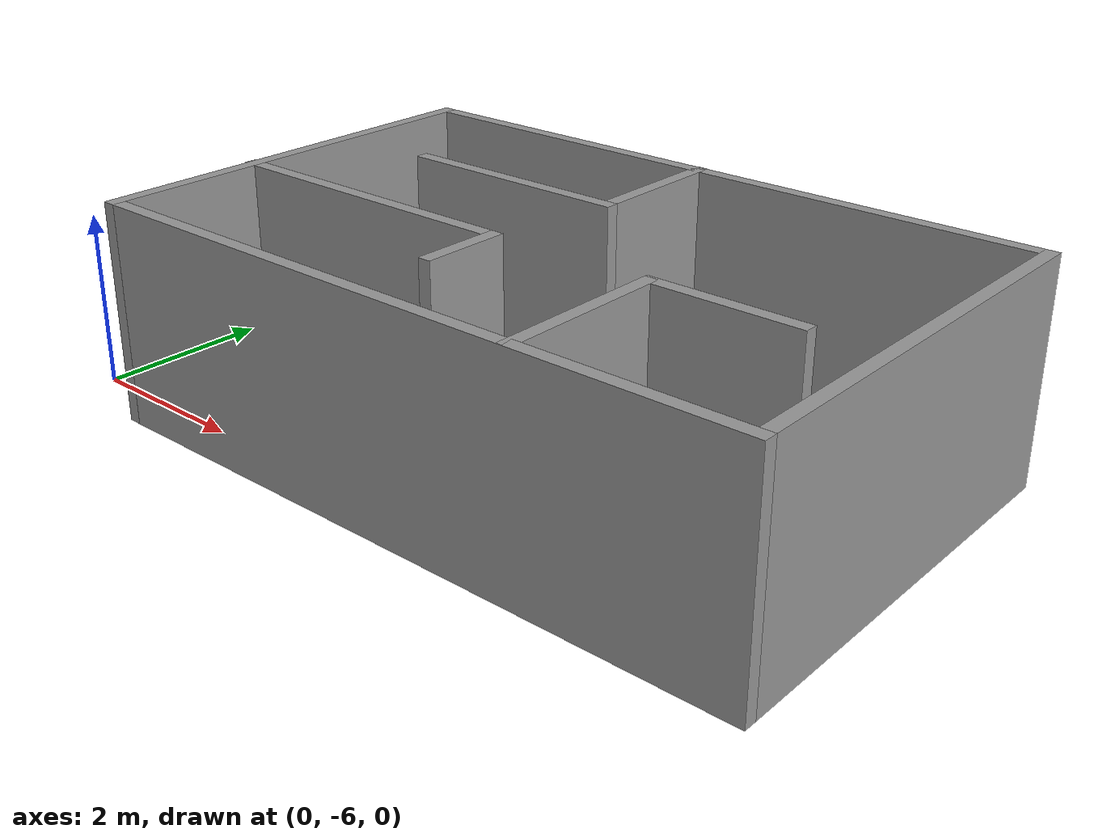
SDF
<?xml version='1.0'?>
<sdf version='1.7'>
  <model name='room'>
    <pose>4.5025 -3.2325 0 0 -0 0</pose>
    <link name='Wall_0'>
      <collision name='Wall_0_Collision'>
        <geometry>
          <box>
            <size>8 0.15 2.5</size>
          </box>
        </geometry>
        <pose>0 0 1.25 0 -0 0</pose>
      </collision>
      <visual name='Wall_0_Visual'>
        <pose>0 0 1.25 0 -0 0</pose>
        <geometry>
          <box>
            <size>8 0.15 2.5</size>
          </box>
        </geometry>
        <material>
          <script>
            <uri>file://media/materials/scripts/gazebo.material</uri>
            <name>Gazebo/Grey</name>
          </script>
          <ambient>1 1 1 1</ambient>
        </material>
        <meta>
          <layer>0</layer>
        </meta>
      </visual>
      <pose>0.5025 1.6925 0 0 -0 0</pose>
    </link>
    <link name='Wall_1'>
      <collision name='Wall_1_Collision'>
        <geometry>
          <box>
            <size>5 0.15 2.5</size>
          </box>
        </geometry>
        <pose>0 0 1.25 0 -0 0</pose>
      </collision>
      <visual name='Wall_1_Visual'>
        <pose>0 0 1.25 0 -0 0</pose>
        <geometry>
          <box>
            <size>5 0.15 2.5</size>
          </box>
        </geometry>
        <material>
          <script>
            <uri>file://media/materials/scripts/gazebo.material</uri>
            <name>Gazebo/Grey</name>
          </script>
          <ambient>1 1 1 1</ambient>
        </material>
        <meta>
          <layer>0</layer>
        </meta>
      </visual>
      <pose>4.4275 -0.7325 0 0 -0 -1.5708</pose>
    </link>
    <link name='Wall_11'>
      <collision name='Wall_11_Collision'>
        <geometry>
          <box>
            <size>2 0.15 2.5</size>
          </box>
        </geometry>
        <pose>0 0 1.25 0 -0 0</pose>
      </collision>
      <visual name='Wall_11_Visual'>
        <pose>0 0 1.25 0 -0 0</pose>
        <geometry>
          <box>
            <size>2 0.15 2.5</size>
          </box>
        </geometry>
        <material>
          <script>
            <uri>file://media/materials/scripts/gazebo.material</uri>
            <name>Gazebo/Grey</name>
          </script>
          <ambient>1 1 1 1</ambient>
        </material>
        <meta>
          <layer>0</layer>
        </meta>
      </visual>
      <pose>2.0205 -2.2265 0 0 -0 1.5708</pose>
    </link>
    <link name='Wall_12'>
      <collision name='Wall_12_Collision'>
        <geometry>
          <box>
            <size>1.75 0.15 2.5</size>
          </box>
        </geometry>
        <pose>0 0 1.25 0 -0 0</pose>
      </collision>
      <visual name='Wall_12_Visual'>
        <pose>0 0 1.25 0 -0 0</pose>
        <geometry>
          <box>
            <size>1.75 0.15 2.5</size>
          </box>
        </geometry>
        <material>
          <script>
            <uri>file://media/materials/scripts/gazebo.material</uri>
            <name>Gazebo/Grey</name>
          </script>
          <ambient>1 1 1 1</ambient>
        </material>
        <meta>
          <layer>0</layer>
        </meta>
      </visual>
      <pose>2.8205 -1.3015 0 0 -0 0</pose>
    </link>
    <link name='Wall_2'>
      <collision name='Wall_2_Collision'>
        <geometry>
          <box>
            <size>8 0.15 2.5</size>
          </box>
        </geometry>
        <pose>0 0 1.25 0 -0 0</pose>
      </collision>
      <visual name='Wall_2_Visual'>
        <pose>0 0 1.25 0 -0 0</pose>
        <geometry>
          <box>
            <size>8 0.15 2.5</size>
          </box>
        </geometry>
        <material>
          <script>
            <uri>file://media/materials/scripts/gazebo.material</uri>
            <name>Gazebo/Grey</name>
          </script>
          <ambient>1 1 1 1</ambient>
        </material>
        <meta>
          <layer>0</layer>
        </meta>
      </visual>
      <pose>0.5025 -3.1575 0 0 -0 3.14159</pose>
    </link>
    <link name='Wall_3'>
      <collision name='Wall_3_Collision'>
        <geometry>
          <box>
            <size>5 0.15 2.5</size>
          </box>
        </geometry>
        <pose>0 0 1.25 0 -0 0</pose>
      </collision>
      <visual name='Wall_3_Visual'>
        <pose>0 0 1.25 0 -0 0</pose>
        <geometry>
          <box>
            <size>5 0.15 2.5</size>
          </box>
        </geometry>
        <material>
          <script>
            <uri>file://media/materials/scripts/gazebo.material</uri>
            <name>Gazebo/Grey</name>
          </script>
          <ambient>1 1 1 1</ambient>
        </material>
        <meta>
          <layer>0</layer>
        </meta>
      </visual>
      <pose>-3.4225 -0.7325 0 0 -0 1.5708</pose>
    </link>
    <link name='Wall_5'>
      <collision name='Wall_5_Collision'>
        <geometry>
          <box>
            <size>1.75 0.15 2.5</size>
          </box>
        </geometry>
        <pose>0 0 1.25 0 -0 0</pose>
      </collision>
      <visual name='Wall_5_Visual'>
        <pose>0 0 1.25 0 -0 0</pose>
        <geometry>
          <box>
            <size>1.75 0.15 2.5</size>
          </box>
        </geometry>
        <material>
          <script>
            <uri>file://media/materials/scripts/gazebo.material</uri>
            <name>Gazebo/Grey</name>
          </script>
          <ambient>1 1 1 1</ambient>
        </material>
        <meta>
          <layer>0</layer>
        </meta>
      </visual>
      <pose>0.421999 0.9015 0 0 -0 -1.5708</pose>
    </link>
    <link name='Wall_6'>
      <collision name='Wall_6_Collision'>
        <geometry>
          <box>
            <size>2.75 0.15 2.5</size>
          </box>
        </geometry>
        <pose>0 0 1.25 0 -0 0</pose>
      </collision>
      <visual name='Wall_6_Visual'>
        <pose>0 0 1.25 0 -0 0</pose>
        <geometry>
          <box>
            <size>2.75 0.15 2.5</size>
          </box>
        </geometry>
        <material>
          <script>
            <uri>file://media/materials/scripts/gazebo.material</uri>
            <name>Gazebo/Grey</name>
          </script>
          <ambient>1 1 1 1</ambient>
        </material>
        <meta>
          <layer>0</layer>
        </meta>
      </visual>
      <pose>-0.878 0.1015 0 0 -0 3.14159</pose>
    </link>
    <link name='Wall_8'>
      <collision name='Wall_8_Collision'>
        <geometry>
          <box>
            <size>3.75 0.15 2.5</size>
          </box>
        </geometry>
        <pose>0 0 1.25 0 -0 0</pose>
      </collision>
      <visual name='Wall_8_Visual'>
        <pose>0 0 1.25 0 -0 0</pose>
        <geometry>
          <box>
            <size>3.75 0.15 2.5</size>
          </box>
        </geometry>
        <material>
          <script>
            <uri>file://media/materials/scripts/gazebo.material</uri>
            <name>Gazebo/Grey</name>
          </script>
          <ambient>1 1 1 1</ambient>
        </material>
        <meta>
          <layer>0</layer>
        </meta>
      </visual>
      <pose>-1.642 -1.3345 0 0 -0 0</pose>
    </link>
    <link name='Wall_9'>
      <collision name='Wall_9_Collision'>
        <geometry>
          <box>
            <size>1 0.15 2.5</size>
          </box>
        </geometry>
        <pose>0 0 1.25 0 -0 0</pose>
      </collision>
      <visual name='Wall_9_Visual'>
        <pose>0 0 1.25 0 -0 0</pose>
        <geometry>
          <box>
            <size>1 0.15 2.5</size>
          </box>
        </geometry>
        <material>
          <script>
            <uri>file://media/materials/scripts/gazebo.material</uri>
            <name>Gazebo/Grey</name>
          </script>
          <ambient>1 1 1 1</ambient>
        </material>
        <meta>
          <layer>0</layer>
        </meta>
      </visual>
      <pose>0.158 -1.7595 0 0 -0 -1.5708</pose>
    </link>
    <static>1</static>
  </model>
</sdf>
